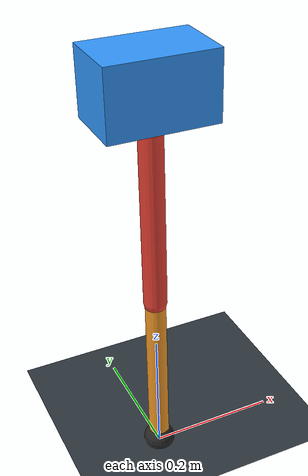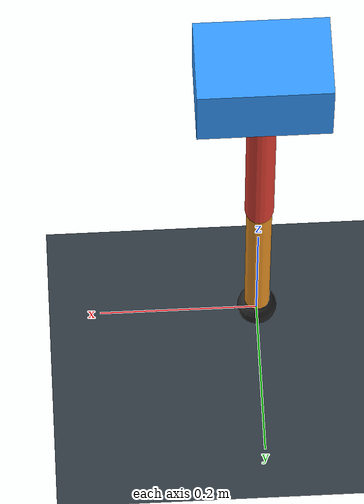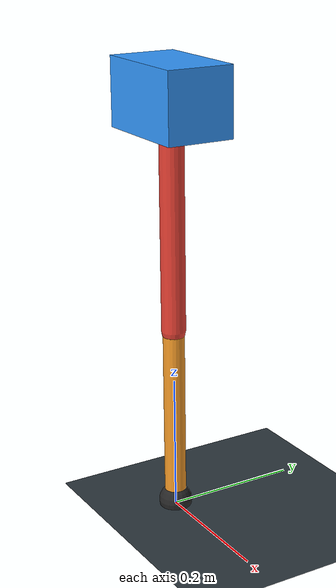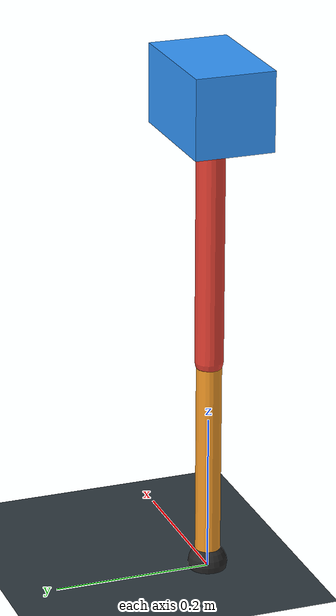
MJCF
<mujoco model="single_axis_two_bar">
  <compiler angle="radian" inertiafromgeom="true"/>
  <option timestep="0.001" integrator="implicitfast" gravity="0 0 -9.81"/>
  <default>
    <joint damping="0.08"/>
    <geom friction="1.2 0.01 0.0001" condim="3"/>
  </default>
  <worldbody>
    <geom name="floor" type="plane" size="5 5 0.1" rgba="0.18 0.22 0.25 1"/>
    <body name="carriage" pos="0 0 0.6202083919108033">
      <joint name="pole_slide" type="slide" axis="0 0 1"/>
      <geom name="payload" type="box" size="0.08 0.05 0.05" mass="2.9212010030715367" rgba="0.2 0.6 1 1"/>
      <body name="thigh" pos="0 0 0">
        <joint name="hip" type="hinge" axis="0 1 0"/>
        <geom name="thigh_link" type="capsule" fromto="0 0 0 0 0 -0.34033058230447705" size="0.018" mass="0.24249003696381574" rgba="0.9 0.25 0.2 1"/>
        <body name="shank" pos="0 0 -0.34033058230447705">
          <joint name="knee" type="hinge" axis="0 1 0"/>
          <geom name="shank_link" type="capsule" fromto="0 0 0 0 0 -0.2732863165726399" size="0.016" mass="0.1947201117180727" rgba="0.95 0.6 0.15 1"/>
          <geom name="foot" type="sphere" pos="0 0 -0.2732863165726399" size="0.025" mass="0.03" rgba="0.15 0.15 0.15 1"/>
          <site name="toe" pos="0 0 -0.2732863165726399" size="0.008"/>
        </body>
      </body>
    </body>
  </worldbody>
  <actuator>
    <motor name="hip_motor" joint="hip" ctrlrange="-38.624981648808586 38.624981648808586"/>
    <motor name="knee_motor" joint="knee" ctrlrange="-101.28983411357403 101.28983411357403"/>
  </actuator>
</mujoco>
